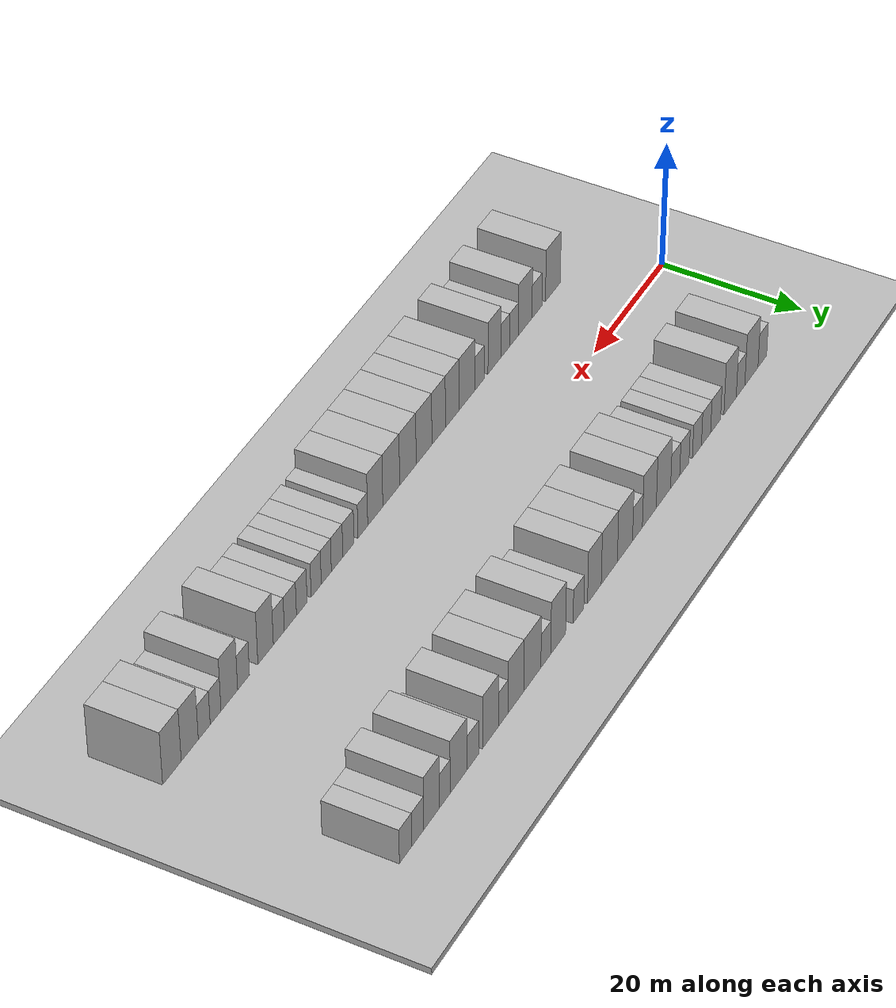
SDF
<sdf version="1.6">
 <world name="default">
  <include><name>ground_plane_1</name><uri>model://HANNAS_ground_plane</uri></include>
  <include>
   <name>ground_plane_2</name>
   <uri>model://HANNAS_ground_plane</uri>
   <pose>100 0 0  0 0 0</pose>
  </include>
  <model name="building_1">
   <static>1</static>
   <pose>12.3237 15.0000 0 0.000000 0.000000 1.570796</pose>
   <link name="link">
    <pose>0 0 3.00 0 0 0</pose>
    <collision name="collision"><geometry><box><size>10.0000 2.6474 6.0000</size></box></geometry></collision>
    <visual name="visual">
     <cast_shadows>0</cast_shadows>
     <geometry><box><size>10.0000 2.6474 6.0000</size></box></geometry>
     <material>
      <script>
       <uri>model://HANNAS_wall/materials/scripts</uri>
       <uri>model://HANNAS_wall/materials/textures</uri>
       <name>vrc/HANNAS_wall</name>
      </script>
     </material>
    </visual>
   </link>
  </model>
  <model name="building_2">
   <static>1</static>
   <pose>15.6544 15.0000 0 0.000000 0.000000 1.570796</pose>
   <link name="link">
    <pose>0 0 4.50 0 0 0</pose>
    <collision name="collision"><geometry><box><size>10.0000 4.0139 9.0000</size></box></geometry></collision>
    <visual name="visual">
     <cast_shadows>0</cast_shadows>
     <geometry><box><size>10.0000 4.0139 9.0000</size></box></geometry>
     <material>
      <script>
       <uri>model://HANNAS_wall/materials/scripts</uri>
       <uri>model://HANNAS_wall/materials/textures</uri>
       <name>vrc/HANNAS_wall</name>
      </script>
     </material>
    </visual>
   </link>
  </model>
  <model name="building_3">
   <static>1</static>
   <pose>18.9484 15.0000 0 0.000000 0.000000 1.570796</pose>
   <link name="link">
    <pose>0 0 3.00 0 0 0</pose>
    <collision name="collision"><geometry><box><size>10.0000 2.5741 6.0000</size></box></geometry></collision>
    <visual name="visual">
     <cast_shadows>0</cast_shadows>
     <geometry><box><size>10.0000 2.5741 6.0000</size></box></geometry>
     <material>
      <script>
       <uri>model://HANNAS_wall/materials/scripts</uri>
       <uri>model://HANNAS_wall/materials/textures</uri>
       <name>vrc/HANNAS_wall</name>
      </script>
     </material>
    </visual>
   </link>
  </model>
  <model name="building_4">
   <static>1</static>
   <pose>22.0810 15.0000 0 0.000000 0.000000 1.570796</pose>
   <link name="link">
    <pose>0 0 4.50 0 0 0</pose>
    <collision name="collision"><geometry><box><size>10.0000 3.6913 9.0000</size></box></geometry></collision>
    <visual name="visual">
     <cast_shadows>0</cast_shadows>
     <geometry><box><size>10.0000 3.6913 9.0000</size></box></geometry>
     <material>
      <script>
       <uri>model://HANNAS_wall/materials/scripts</uri>
       <uri>model://HANNAS_wall/materials/textures</uri>
       <name>vrc/HANNAS_wall</name>
      </script>
     </material>
    </visual>
   </link>
  </model>
  <model name="building_5">
   <static>1</static>
   <pose>26.3997 15.0000 0 0.000000 0.000000 1.570796</pose>
   <link name="link">
    <pose>0 0 3.00 0 0 0</pose>
    <collision name="collision"><geometry><box><size>10.0000 2.9461 6.0000</size></box></geometry></collision>
    <visual name="visual">
     <cast_shadows>0</cast_shadows>
     <geometry><box><size>10.0000 2.9461 6.0000</size></box></geometry>
     <material>
      <script>
       <uri>model://HANNAS_wall/materials/scripts</uri>
       <uri>model://HANNAS_wall/materials/textures</uri>
       <name>vrc/HANNAS_wall</name>
      </script>
     </material>
    </visual>
   </link>
  </model>
  <model name="building_6">
   <static>1</static>
   <pose>29.2214 15.0000 0 0.000000 0.000000 1.570796</pose>
   <link name="link">
    <pose>0 0 3.00 0 0 0</pose>
    <collision name="collision"><geometry><box><size>10.0000 2.6973 6.0000</size></box></geometry></collision>
    <visual name="visual">
     <cast_shadows>0</cast_shadows>
     <geometry><box><size>10.0000 2.6973 6.0000</size></box></geometry>
     <material>
      <script>
       <uri>model://HANNAS_wall/materials/scripts</uri>
       <uri>model://HANNAS_wall/materials/textures</uri>
       <name>vrc/HANNAS_wall</name>
      </script>
     </material>
    </visual>
   </link>
  </model>
  <model name="building_7">
   <static>1</static>
   <pose>31.8918 15.0000 0 0.000000 0.000000 1.570796</pose>
   <link name="link">
    <pose>0 0 3.00 0 0 0</pose>
    <collision name="collision"><geometry><box><size>10.0000 2.6435 6.0000</size></box></geometry></collision>
    <visual name="visual">
     <cast_shadows>0</cast_shadows>
     <geometry><box><size>10.0000 2.6435 6.0000</size></box></geometry>
     <material>
      <script>
       <uri>model://HANNAS_wall/materials/scripts</uri>
       <uri>model://HANNAS_wall/materials/textures</uri>
       <name>vrc/HANNAS_wall</name>
      </script>
     </material>
    </visual>
   </link>
  </model>
  <model name="building_8">
   <static>1</static>
   <pose>35.5562 15.0000 0 0.000000 0.000000 1.570796</pose>
   <link name="link">
    <pose>0 0 3.00 0 0 0</pose>
    <collision name="collision"><geometry><box><size>10.0000 2.6854 6.0000</size></box></geometry></collision>
    <visual name="visual">
     <cast_shadows>0</cast_shadows>
     <geometry><box><size>10.0000 2.6854 6.0000</size></box></geometry>
     <material>
      <script>
       <uri>model://HANNAS_wall/materials/scripts</uri>
       <uri>model://HANNAS_wall/materials/textures</uri>
       <name>vrc/HANNAS_wall</name>
      </script>
     </material>
    </visual>
   </link>
  </model>
  <model name="building_9">
   <static>1</static>
   <pose>38.2074 15.0000 0 0.000000 0.000000 1.570796</pose>
   <link name="link">
    <pose>0 0 3.00 0 0 0</pose>
    <collision name="collision"><geometry><box><size>10.0000 2.6171 6.0000</size></box></geometry></collision>
    <visual name="visual">
     <cast_shadows>0</cast_shadows>
     <geometry><box><size>10.0000 2.6171 6.0000</size></box></geometry>
     <material>
      <script>
       <uri>model://HANNAS_wall/materials/scripts</uri>
       <uri>model://HANNAS_wall/materials/textures</uri>
       <name>vrc/HANNAS_wall</name>
      </script>
     </material>
    </visual>
   </link>
  </model>
  <model name="building_10">
   <static>1</static>
   <pose>41.5692 15.0000 0 0.000000 0.000000 1.570796</pose>
   <link name="link">
    <pose>0 0 4.50 0 0 0</pose>
    <collision name="collision"><geometry><box><size>10.0000 4.1065 9.0000</size></box></geometry></collision>
    <visual name="visual">
     <cast_shadows>0</cast_shadows>
     <geometry><box><size>10.0000 4.1065 9.0000</size></box></geometry>
     <material>
      <script>
       <uri>model://HANNAS_wall/materials/scripts</uri>
       <uri>model://HANNAS_wall/materials/textures</uri>
       <name>vrc/HANNAS_wall</name>
      </script>
     </material>
    </visual>
   </link>
  </model>
  <model name="building_11">
   <static>1</static>
   <pose>45.5778 15.0000 0 0.000000 0.000000 1.570796</pose>
   <link name="link">
    <pose>0 0 4.50 0 0 0</pose>
    <collision name="collision"><geometry><box><size>10.0000 3.9108 9.0000</size></box></geometry></collision>
    <visual name="visual">
     <cast_shadows>0</cast_shadows>
     <geometry><box><size>10.0000 3.9108 9.0000</size></box></geometry>
     <material>
      <script>
       <uri>model://HANNAS_wall/materials/scripts</uri>
       <uri>model://HANNAS_wall/materials/textures</uri>
       <name>vrc/HANNAS_wall</name>
      </script>
     </material>
    </visual>
   </link>
  </model>
  <model name="building_12">
   <static>1</static>
   <pose>48.9108 15.0000 0 0.000000 0.000000 1.570796</pose>
   <link name="link">
    <pose>0 0 3.00 0 0 0</pose>
    <collision name="collision"><geometry><box><size>10.0000 2.7551 6.0000</size></box></geometry></collision>
    <visual name="visual">
     <cast_shadows>0</cast_shadows>
     <geometry><box><size>10.0000 2.7551 6.0000</size></box></geometry>
     <material>
      <script>
       <uri>model://HANNAS_wall/materials/scripts</uri>
       <uri>model://HANNAS_wall/materials/textures</uri>
       <name>vrc/HANNAS_wall</name>
      </script>
     </material>
    </visual>
   </link>
  </model>
  <model name="building_13">
   <static>1</static>
   <pose>52.4000 15.0000 0 0.000000 0.000000 1.570796</pose>
   <link name="link">
    <pose>0 0 4.50 0 0 0</pose>
    <collision name="collision"><geometry><box><size>10.0000 4.2232 9.0000</size></box></geometry></collision>
    <visual name="visual">
     <cast_shadows>0</cast_shadows>
     <geometry><box><size>10.0000 4.2232 9.0000</size></box></geometry>
     <material>
      <script>
       <uri>model://HANNAS_wall/materials/scripts</uri>
       <uri>model://HANNAS_wall/materials/textures</uri>
       <name>vrc/HANNAS_wall</name>
      </script>
     </material>
    </visual>
   </link>
  </model>
  <model name="building_14">
   <static>1</static>
   <pose>56.7198 15.0000 0 0.000000 0.000000 1.570796</pose>
   <link name="link">
    <pose>0 0 4.50 0 0 0</pose>
    <collision name="collision"><geometry><box><size>10.0000 4.4164 9.0000</size></box></geometry></collision>
    <visual name="visual">
     <cast_shadows>0</cast_shadows>
     <geometry><box><size>10.0000 4.4164 9.0000</size></box></geometry>
     <material>
      <script>
       <uri>model://HANNAS_wall/materials/scripts</uri>
       <uri>model://HANNAS_wall/materials/textures</uri>
       <name>vrc/HANNAS_wall</name>
      </script>
     </material>
    </visual>
   </link>
  </model>
  <model name="building_15">
   <static>1</static>
   <pose>60.7979 15.0000 0 0.000000 0.000000 1.570796</pose>
   <link name="link">
    <pose>0 0 4.50 0 0 0</pose>
    <collision name="collision"><geometry><box><size>10.0000 3.7398 9.0000</size></box></geometry></collision>
    <visual name="visual">
     <cast_shadows>0</cast_shadows>
     <geometry><box><size>10.0000 3.7398 9.0000</size></box></geometry>
     <material>
      <script>
       <uri>model://HANNAS_wall/materials/scripts</uri>
       <uri>model://HANNAS_wall/materials/textures</uri>
       <name>vrc/HANNAS_wall</name>
      </script>
     </material>
    </visual>
   </link>
  </model>
  <model name="building_16">
   <static>1</static>
   <pose>65.1097 15.0000 0 0.000000 0.000000 1.570796</pose>
   <link name="link">
    <pose>0 0 3.00 0 0 0</pose>
    <collision name="collision"><geometry><box><size>10.0000 2.8838 6.0000</size></box></geometry></collision>
    <visual name="visual">
     <cast_shadows>0</cast_shadows>
     <geometry><box><size>10.0000 2.8838 6.0000</size></box></geometry>
     <material>
      <script>
       <uri>model://HANNAS_wall/materials/scripts</uri>
       <uri>model://HANNAS_wall/materials/textures</uri>
       <name>vrc/HANNAS_wall</name>
      </script>
     </material>
    </visual>
   </link>
  </model>
  <model name="building_17">
   <static>1</static>
   <pose>70.5278 15.0000 0 0.000000 0.000000 1.570796</pose>
   <link name="link">
    <pose>0 0 4.50 0 0 0</pose>
    <collision name="collision"><geometry><box><size>10.0000 3.9525 9.0000</size></box></geometry></collision>
    <visual name="visual">
     <cast_shadows>0</cast_shadows>
     <geometry><box><size>10.0000 3.9525 9.0000</size></box></geometry>
     <material>
      <script>
       <uri>model://HANNAS_wall/materials/scripts</uri>
       <uri>model://HANNAS_wall/materials/textures</uri>
       <name>vrc/HANNAS_wall</name>
      </script>
     </material>
    </visual>
   </link>
  </model>
  <model name="building_18">
   <static>1</static>
   <pose>73.7992 15.0000 0 0.000000 0.000000 1.570796</pose>
   <link name="link">
    <pose>0 0 3.00 0 0 0</pose>
    <collision name="collision"><geometry><box><size>10.0000 2.5903 6.0000</size></box></geometry></collision>
    <visual name="visual">
     <cast_shadows>0</cast_shadows>
     <geometry><box><size>10.0000 2.5903 6.0000</size></box></geometry>
     <material>
      <script>
       <uri>model://HANNAS_wall/materials/scripts</uri>
       <uri>model://HANNAS_wall/materials/textures</uri>
       <name>vrc/HANNAS_wall</name>
      </script>
     </material>
    </visual>
   </link>
  </model>
  <model name="building_19">
   <static>1</static>
   <pose>77.3071 15.0000 0 0.000000 0.000000 1.570796</pose>
   <link name="link">
    <pose>0 0 4.50 0 0 0</pose>
    <collision name="collision"><geometry><box><size>10.0000 4.4255 9.0000</size></box></geometry></collision>
    <visual name="visual">
     <cast_shadows>0</cast_shadows>
     <geometry><box><size>10.0000 4.4255 9.0000</size></box></geometry>
     <material>
      <script>
       <uri>model://HANNAS_wall/materials/scripts</uri>
       <uri>model://HANNAS_wall/materials/textures</uri>
       <name>vrc/HANNAS_wall</name>
      </script>
     </material>
    </visual>
   </link>
  </model>
  <model name="building_20">
   <static>1</static>
   <pose>81.5744 15.0000 0 0.000000 0.000000 1.570796</pose>
   <link name="link">
    <pose>0 0 4.50 0 0 0</pose>
    <collision name="collision"><geometry><box><size>10.0000 4.1091 9.0000</size></box></geometry></collision>
    <visual name="visual">
     <cast_shadows>0</cast_shadows>
     <geometry><box><size>10.0000 4.1091 9.0000</size></box></geometry>
     <material>
      <script>
       <uri>model://HANNAS_wall/materials/scripts</uri>
       <uri>model://HANNAS_wall/materials/textures</uri>
       <name>vrc/HANNAS_wall</name>
      </script>
     </material>
    </visual>
   </link>
  </model>
  <model name="building_21">
   <static>1</static>
   <pose>84.8576 15.0000 0 0.000000 0.000000 1.570796</pose>
   <link name="link">
    <pose>0 0 3.00 0 0 0</pose>
    <collision name="collision"><geometry><box><size>10.0000 2.4574 6.0000</size></box></geometry></collision>
    <visual name="visual">
     <cast_shadows>0</cast_shadows>
     <geometry><box><size>10.0000 2.4574 6.0000</size></box></geometry>
     <material>
      <script>
       <uri>model://HANNAS_wall/materials/scripts</uri>
       <uri>model://HANNAS_wall/materials/textures</uri>
       <name>vrc/HANNAS_wall</name>
      </script>
     </material>
    </visual>
   </link>
  </model>
  <model name="building_22">
   <static>1</static>
   <pose>88.1054 15.0000 0 0.000000 0.000000 1.570796</pose>
   <link name="link">
    <pose>0 0 4.50 0 0 0</pose>
    <collision name="collision"><geometry><box><size>10.0000 4.0382 9.0000</size></box></geometry></collision>
    <visual name="visual">
     <cast_shadows>0</cast_shadows>
     <geometry><box><size>10.0000 4.0382 9.0000</size></box></geometry>
     <material>
      <script>
       <uri>model://HANNAS_wall/materials/scripts</uri>
       <uri>model://HANNAS_wall/materials/textures</uri>
       <name>vrc/HANNAS_wall</name>
      </script>
     </material>
    </visual>
   </link>
  </model>
  <model name="building_23">
   <static>1</static>
   <pose>92.5916 15.0000 0 0.000000 0.000000 1.570796</pose>
   <link name="link">
    <pose>0 0 3.00 0 0 0</pose>
    <collision name="collision"><geometry><box><size>10.0000 2.9342 6.0000</size></box></geometry></collision>
    <visual name="visual">
     <cast_shadows>0</cast_shadows>
     <geometry><box><size>10.0000 2.9342 6.0000</size></box></geometry>
     <material>
      <script>
       <uri>model://HANNAS_wall/materials/scripts</uri>
       <uri>model://HANNAS_wall/materials/textures</uri>
       <name>vrc/HANNAS_wall</name>
      </script>
     </material>
    </visual>
   </link>
  </model>
  <model name="building_24">
   <static>1</static>
   <pose>96.1244 15.0000 0 0.000000 0.000000 1.570796</pose>
   <link name="link">
    <pose>0 0 4.50 0 0 0</pose>
    <collision name="collision"><geometry><box><size>10.0000 4.1314 9.0000</size></box></geometry></collision>
    <visual name="visual">
     <cast_shadows>0</cast_shadows>
     <geometry><box><size>10.0000 4.1314 9.0000</size></box></geometry>
     <material>
      <script>
       <uri>model://HANNAS_wall/materials/scripts</uri>
       <uri>model://HANNAS_wall/materials/textures</uri>
       <name>vrc/HANNAS_wall</name>
      </script>
     </material>
    </visual>
   </link>
  </model>
  <model name="building_25">
   <static>1</static>
   <pose>99.4918 15.0000 0 0.000000 0.000000 1.570796</pose>
   <link name="link">
    <pose>0 0 3.00 0 0 0</pose>
    <collision name="collision"><geometry><box><size>10.0000 2.6035 6.0000</size></box></geometry></collision>
    <visual name="visual">
     <cast_shadows>0</cast_shadows>
     <geometry><box><size>10.0000 2.6035 6.0000</size></box></geometry>
     <material>
      <script>
       <uri>model://HANNAS_wall/materials/scripts</uri>
       <uri>model://HANNAS_wall/materials/textures</uri>
       <name>vrc/HANNAS_wall</name>
      </script>
     </material>
    </visual>
   </link>
  </model>
  <model name="building_26">
   <static>1</static>
   <pose>102.7264 15.0000 0 0.000000 0.000000 1.570796</pose>
   <link name="link">
    <pose>0 0 4.50 0 0 0</pose>
    <collision name="collision"><geometry><box><size>10.0000 3.8657 9.0000</size></box></geometry></collision>
    <visual name="visual">
     <cast_shadows>0</cast_shadows>
     <geometry><box><size>10.0000 3.8657 9.0000</size></box></geometry>
     <material>
      <script>
       <uri>model://HANNAS_wall/materials/scripts</uri>
       <uri>model://HANNAS_wall/materials/textures</uri>
       <name>vrc/HANNAS_wall</name>
      </script>
     </material>
    </visual>
   </link>
  </model>
  <model name="building_27">
   <static>1</static>
   <pose>106.1207 15.0000 0 0.000000 0.000000 1.570796</pose>
   <link name="link">
    <pose>0 0 3.00 0 0 0</pose>
    <collision name="collision"><geometry><box><size>10.0000 2.9230 6.0000</size></box></geometry></collision>
    <visual name="visual">
     <cast_shadows>0</cast_shadows>
     <geometry><box><size>10.0000 2.9230 6.0000</size></box></geometry>
     <material>
      <script>
       <uri>model://HANNAS_wall/materials/scripts</uri>
       <uri>model://HANNAS_wall/materials/textures</uri>
       <name>vrc/HANNAS_wall</name>
      </script>
     </material>
    </visual>
   </link>
  </model>
  <model name="building_28">
   <static>1</static>
   <pose>109.0614 15.0000 0 0.000000 0.000000 1.570796</pose>
   <link name="link">
    <pose>0 0 3.00 0 0 0</pose>
    <collision name="collision"><geometry><box><size>10.0000 2.9583 6.0000</size></box></geometry></collision>
    <visual name="visual">
     <cast_shadows>0</cast_shadows>
     <geometry><box><size>10.0000 2.9583 6.0000</size></box></geometry>
     <material>
      <script>
       <uri>model://HANNAS_wall/materials/scripts</uri>
       <uri>model://HANNAS_wall/materials/textures</uri>
       <name>vrc/HANNAS_wall</name>
      </script>
     </material>
    </visual>
   </link>
  </model>
  <model name="building_58">
   <static>1</static>
   <pose>12.1530 -15.0000 0 0.000000 0.000000 1.570796</pose>
   <link name="link">
    <pose>0 0 4.50 0 0 0</pose>
    <collision name="collision"><geometry><box><size>10.0000 4.3059 9.0000</size></box></geometry></collision>
    <visual name="visual">
     <cast_shadows>0</cast_shadows>
     <geometry><box><size>10.0000 4.3059 9.0000</size></box></geometry>
     <material>
      <script>
       <uri>model://HANNAS_wall/materials/scripts</uri>
       <uri>model://HANNAS_wall/materials/textures</uri>
       <name>vrc/HANNAS_wall</name>
      </script>
     </material>
    </visual>
   </link>
  </model>
  <model name="building_59">
   <static>1</static>
   <pose>16.7434 -15.0000 0 0.000000 0.000000 1.570796</pose>
   <link name="link">
    <pose>0 0 3.00 0 0 0</pose>
    <collision name="collision"><geometry><box><size>10.0000 2.8750 6.0000</size></box></geometry></collision>
    <visual name="visual">
     <cast_shadows>0</cast_shadows>
     <geometry><box><size>10.0000 2.8750 6.0000</size></box></geometry>
     <material>
      <script>
       <uri>model://HANNAS_wall/materials/scripts</uri>
       <uri>model://HANNAS_wall/materials/textures</uri>
       <name>vrc/HANNAS_wall</name>
      </script>
     </material>
    </visual>
   </link>
  </model>
  <model name="building_60">
   <static>1</static>
   <pose>20.1097 -15.0000 0 0.000000 0.000000 1.570796</pose>
   <link name="link">
    <pose>0 0 4.50 0 0 0</pose>
    <collision name="collision"><geometry><box><size>10.0000 3.8575 9.0000</size></box></geometry></collision>
    <visual name="visual">
     <cast_shadows>0</cast_shadows>
     <geometry><box><size>10.0000 3.8575 9.0000</size></box></geometry>
     <material>
      <script>
       <uri>model://HANNAS_wall/materials/scripts</uri>
       <uri>model://HANNAS_wall/materials/textures</uri>
       <name>vrc/HANNAS_wall</name>
      </script>
     </material>
    </visual>
   </link>
  </model>
  <model name="building_61">
   <static>1</static>
   <pose>23.2841 -15.0000 0 0.000000 0.000000 1.570796</pose>
   <link name="link">
    <pose>0 0 3.00 0 0 0</pose>
    <collision name="collision"><geometry><box><size>10.0000 2.4914 6.0000</size></box></geometry></collision>
    <visual name="visual">
     <cast_shadows>0</cast_shadows>
     <geometry><box><size>10.0000 2.4914 6.0000</size></box></geometry>
     <material>
      <script>
       <uri>model://HANNAS_wall/materials/scripts</uri>
       <uri>model://HANNAS_wall/materials/textures</uri>
       <name>vrc/HANNAS_wall</name>
      </script>
     </material>
    </visual>
   </link>
  </model>
  <model name="building_62">
   <static>1</static>
   <pose>25.7311 -15.0000 0 0.000000 0.000000 1.570796</pose>
   <link name="link">
    <pose>0 0 3.00 0 0 0</pose>
    <collision name="collision"><geometry><box><size>10.0000 2.4025 6.0000</size></box></geometry></collision>
    <visual name="visual">
     <cast_shadows>0</cast_shadows>
     <geometry><box><size>10.0000 2.4025 6.0000</size></box></geometry>
     <material>
      <script>
       <uri>model://HANNAS_wall/materials/scripts</uri>
       <uri>model://HANNAS_wall/materials/textures</uri>
       <name>vrc/HANNAS_wall</name>
      </script>
     </material>
    </visual>
   </link>
  </model>
  <model name="building_63">
   <static>1</static>
   <pose>28.7611 -15.0000 0 0.000000 0.000000 1.570796</pose>
   <link name="link">
    <pose>0 0 4.50 0 0 0</pose>
    <collision name="collision"><geometry><box><size>10.0000 3.6576 9.0000</size></box></geometry></collision>
    <visual name="visual">
     <cast_shadows>0</cast_shadows>
     <geometry><box><size>10.0000 3.6576 9.0000</size></box></geometry>
     <material>
      <script>
       <uri>model://HANNAS_wall/materials/scripts</uri>
       <uri>model://HANNAS_wall/materials/textures</uri>
       <name>vrc/HANNAS_wall</name>
      </script>
     </material>
    </visual>
   </link>
  </model>
  <model name="building_64">
   <static>1</static>
   <pose>32.8890 -15.0000 0 0.000000 0.000000 1.570796</pose>
   <link name="link">
    <pose>0 0 3.00 0 0 0</pose>
    <collision name="collision"><geometry><box><size>10.0000 2.5982 6.0000</size></box></geometry></collision>
    <visual name="visual">
     <cast_shadows>0</cast_shadows>
     <geometry><box><size>10.0000 2.5982 6.0000</size></box></geometry>
     <material>
      <script>
       <uri>model://HANNAS_wall/materials/scripts</uri>
       <uri>model://HANNAS_wall/materials/textures</uri>
       <name>vrc/HANNAS_wall</name>
      </script>
     </material>
    </visual>
   </link>
  </model>
  <model name="building_65">
   <static>1</static>
   <pose>36.3493 -15.0000 0 0.000000 0.000000 1.570796</pose>
   <link name="link">
    <pose>0 0 4.50 0 0 0</pose>
    <collision name="collision"><geometry><box><size>10.0000 4.3224 9.0000</size></box></geometry></collision>
    <visual name="visual">
     <cast_shadows>0</cast_shadows>
     <geometry><box><size>10.0000 4.3224 9.0000</size></box></geometry>
     <material>
      <script>
       <uri>model://HANNAS_wall/materials/scripts</uri>
       <uri>model://HANNAS_wall/materials/textures</uri>
       <name>vrc/HANNAS_wall</name>
      </script>
     </material>
    </visual>
   </link>
  </model>
  <model name="building_66">
   <static>1</static>
   <pose>40.3686 -15.0000 0 0.000000 0.000000 1.570796</pose>
   <link name="link">
    <pose>0 0 4.50 0 0 0</pose>
    <collision name="collision"><geometry><box><size>10.0000 3.7162 9.0000</size></box></geometry></collision>
    <visual name="visual">
     <cast_shadows>0</cast_shadows>
     <geometry><box><size>10.0000 3.7162 9.0000</size></box></geometry>
     <material>
      <script>
       <uri>model://HANNAS_wall/materials/scripts</uri>
       <uri>model://HANNAS_wall/materials/textures</uri>
       <name>vrc/HANNAS_wall</name>
      </script>
     </material>
    </visual>
   </link>
  </model>
  <model name="building_67">
   <static>1</static>
   <pose>44.0421 -15.0000 0 0.000000 0.000000 1.570796</pose>
   <link name="link">
    <pose>0 0 4.50 0 0 0</pose>
    <collision name="collision"><geometry><box><size>10.0000 3.6307 9.0000</size></box></geometry></collision>
    <visual name="visual">
     <cast_shadows>0</cast_shadows>
     <geometry><box><size>10.0000 3.6307 9.0000</size></box></geometry>
     <material>
      <script>
       <uri>model://HANNAS_wall/materials/scripts</uri>
       <uri>model://HANNAS_wall/materials/textures</uri>
       <name>vrc/HANNAS_wall</name>
      </script>
     </material>
    </visual>
   </link>
  </model>
  <model name="building_68">
   <static>1</static>
   <pose>47.9543 -15.0000 0 0.000000 0.000000 1.570796</pose>
   <link name="link">
    <pose>0 0 4.50 0 0 0</pose>
    <collision name="collision"><geometry><box><size>10.0000 4.1936 9.0000</size></box></geometry></collision>
    <visual name="visual">
     <cast_shadows>0</cast_shadows>
     <geometry><box><size>10.0000 4.1936 9.0000</size></box></geometry>
     <material>
      <script>
       <uri>model://HANNAS_wall/materials/scripts</uri>
       <uri>model://HANNAS_wall/materials/textures</uri>
       <name>vrc/HANNAS_wall</name>
      </script>
     </material>
    </visual>
   </link>
  </model>
  <model name="building_69">
   <static>1</static>
   <pose>52.2260 -15.0000 0 0.000000 0.000000 1.570796</pose>
   <link name="link">
    <pose>0 0 4.50 0 0 0</pose>
    <collision name="collision"><geometry><box><size>10.0000 4.3500 9.0000</size></box></geometry></collision>
    <visual name="visual">
     <cast_shadows>0</cast_shadows>
     <geometry><box><size>10.0000 4.3500 9.0000</size></box></geometry>
     <material>
      <script>
       <uri>model://HANNAS_wall/materials/scripts</uri>
       <uri>model://HANNAS_wall/materials/textures</uri>
       <name>vrc/HANNAS_wall</name>
      </script>
     </material>
    </visual>
   </link>
  </model>
  <model name="building_70">
   <static>1</static>
   <pose>56.5990 -15.0000 0 0.000000 0.000000 1.570796</pose>
   <link name="link">
    <pose>0 0 4.50 0 0 0</pose>
    <collision name="collision"><geometry><box><size>10.0000 4.3959 9.0000</size></box></geometry></collision>
    <visual name="visual">
     <cast_shadows>0</cast_shadows>
     <geometry><box><size>10.0000 4.3959 9.0000</size></box></geometry>
     <material>
      <script>
       <uri>model://HANNAS_wall/materials/scripts</uri>
       <uri>model://HANNAS_wall/materials/textures</uri>
       <name>vrc/HANNAS_wall</name>
      </script>
     </material>
    </visual>
   </link>
  </model>
  <model name="building_71">
   <static>1</static>
   <pose>60.7470 -15.0000 0 0.000000 0.000000 1.570796</pose>
   <link name="link">
    <pose>0 0 4.50 0 0 0</pose>
    <collision name="collision"><geometry><box><size>10.0000 3.9002 9.0000</size></box></geometry></collision>
    <visual name="visual">
     <cast_shadows>0</cast_shadows>
     <geometry><box><size>10.0000 3.9002 9.0000</size></box></geometry>
     <material>
      <script>
       <uri>model://HANNAS_wall/materials/scripts</uri>
       <uri>model://HANNAS_wall/materials/textures</uri>
       <name>vrc/HANNAS_wall</name>
      </script>
     </material>
    </visual>
   </link>
  </model>
  <model name="building_72">
   <static>1</static>
   <pose>63.9483 -15.0000 0 0.000000 0.000000 1.570796</pose>
   <link name="link">
    <pose>0 0 3.00 0 0 0</pose>
    <collision name="collision"><geometry><box><size>10.0000 2.5024 6.0000</size></box></geometry></collision>
    <visual name="visual">
     <cast_shadows>0</cast_shadows>
     <geometry><box><size>10.0000 2.5024 6.0000</size></box></geometry>
     <material>
      <script>
       <uri>model://HANNAS_wall/materials/scripts</uri>
       <uri>model://HANNAS_wall/materials/textures</uri>
       <name>vrc/HANNAS_wall</name>
      </script>
     </material>
    </visual>
   </link>
  </model>
  <model name="building_73">
   <static>1</static>
   <pose>67.6168 -15.0000 0 0.000000 0.000000 1.570796</pose>
   <link name="link">
    <pose>0 0 3.00 0 0 0</pose>
    <collision name="collision"><geometry><box><size>10.0000 2.8345 6.0000</size></box></geometry></collision>
    <visual name="visual">
     <cast_shadows>0</cast_shadows>
     <geometry><box><size>10.0000 2.8345 6.0000</size></box></geometry>
     <material>
      <script>
       <uri>model://HANNAS_wall/materials/scripts</uri>
       <uri>model://HANNAS_wall/materials/textures</uri>
       <name>vrc/HANNAS_wall</name>
      </script>
     </material>
    </visual>
   </link>
  </model>
  <model name="building_74">
   <static>1</static>
   <pose>70.4877 -15.0000 0 0.000000 0.000000 1.570796</pose>
   <link name="link">
    <pose>0 0 3.00 0 0 0</pose>
    <collision name="collision"><geometry><box><size>10.0000 2.9074 6.0000</size></box></geometry></collision>
    <visual name="visual">
     <cast_shadows>0</cast_shadows>
     <geometry><box><size>10.0000 2.9074 6.0000</size></box></geometry>
     <material>
      <script>
       <uri>model://HANNAS_wall/materials/scripts</uri>
       <uri>model://HANNAS_wall/materials/textures</uri>
       <name>vrc/HANNAS_wall</name>
      </script>
     </material>
    </visual>
   </link>
  </model>
  <model name="building_75">
   <static>1</static>
   <pose>73.1978 -15.0000 0 0.000000 0.000000 1.570796</pose>
   <link name="link">
    <pose>0 0 3.00 0 0 0</pose>
    <collision name="collision"><geometry><box><size>10.0000 2.5127 6.0000</size></box></geometry></collision>
    <visual name="visual">
     <cast_shadows>0</cast_shadows>
     <geometry><box><size>10.0000 2.5127 6.0000</size></box></geometry>
     <material>
      <script>
       <uri>model://HANNAS_wall/materials/scripts</uri>
       <uri>model://HANNAS_wall/materials/textures</uri>
       <name>vrc/HANNAS_wall</name>
      </script>
     </material>
    </visual>
   </link>
  </model>
  <model name="building_76">
   <static>1</static>
   <pose>75.7167 -15.0000 0 0.000000 0.000000 1.570796</pose>
   <link name="link">
    <pose>0 0 3.00 0 0 0</pose>
    <collision name="collision"><geometry><box><size>10.0000 2.5252 6.0000</size></box></geometry></collision>
    <visual name="visual">
     <cast_shadows>0</cast_shadows>
     <geometry><box><size>10.0000 2.5252 6.0000</size></box></geometry>
     <material>
      <script>
       <uri>model://HANNAS_wall/materials/scripts</uri>
       <uri>model://HANNAS_wall/materials/textures</uri>
       <name>vrc/HANNAS_wall</name>
      </script>
     </material>
    </visual>
   </link>
  </model>
  <model name="building_77">
   <static>1</static>
   <pose>79.2878 -15.0000 0 0.000000 0.000000 1.570796</pose>
   <link name="link">
    <pose>0 0 3.00 0 0 0</pose>
    <collision name="collision"><geometry><box><size>10.0000 2.6170 6.0000</size></box></geometry></collision>
    <visual name="visual">
     <cast_shadows>0</cast_shadows>
     <geometry><box><size>10.0000 2.6170 6.0000</size></box></geometry>
     <material>
      <script>
       <uri>model://HANNAS_wall/materials/scripts</uri>
       <uri>model://HANNAS_wall/materials/textures</uri>
       <name>vrc/HANNAS_wall</name>
      </script>
     </material>
    </visual>
   </link>
  </model>
  <model name="building_78">
   <static>1</static>
   <pose>82.0816 -15.0000 0 0.000000 0.000000 1.570796</pose>
   <link name="link">
    <pose>0 0 3.00 0 0 0</pose>
    <collision name="collision"><geometry><box><size>10.0000 2.9705 6.0000</size></box></geometry></collision>
    <visual name="visual">
     <cast_shadows>0</cast_shadows>
     <geometry><box><size>10.0000 2.9705 6.0000</size></box></geometry>
     <material>
      <script>
       <uri>model://HANNAS_wall/materials/scripts</uri>
       <uri>model://HANNAS_wall/materials/textures</uri>
       <name>vrc/HANNAS_wall</name>
      </script>
     </material>
    </visual>
   </link>
  </model>
  <model name="building_79">
   <static>1</static>
   <pose>84.9033 -15.0000 0 0.000000 0.000000 1.570796</pose>
   <link name="link">
    <pose>0 0 3.00 0 0 0</pose>
    <collision name="collision"><geometry><box><size>10.0000 2.6730 6.0000</size></box></geometry></collision>
    <visual name="visual">
     <cast_shadows>0</cast_shadows>
     <geometry><box><size>10.0000 2.6730 6.0000</size></box></geometry>
     <material>
      <script>
       <uri>model://HANNAS_wall/materials/scripts</uri>
       <uri>model://HANNAS_wall/materials/textures</uri>
       <name>vrc/HANNAS_wall</name>
      </script>
     </material>
    </visual>
   </link>
  </model>
  <model name="building_80">
   <static>1</static>
   <pose>88.1082 -15.0000 0 0.000000 0.000000 1.570796</pose>
   <link name="link">
    <pose>0 0 4.50 0 0 0</pose>
    <collision name="collision"><geometry><box><size>10.0000 3.7370 9.0000</size></box></geometry></collision>
    <visual name="visual">
     <cast_shadows>0</cast_shadows>
     <geometry><box><size>10.0000 3.7370 9.0000</size></box></geometry>
     <material>
      <script>
       <uri>model://HANNAS_wall/materials/scripts</uri>
       <uri>model://HANNAS_wall/materials/textures</uri>
       <name>vrc/HANNAS_wall</name>
      </script>
     </material>
    </visual>
   </link>
  </model>
  <model name="building_81">
   <static>1</static>
   <pose>93.3863 -15.0000 0 0.000000 0.000000 1.570796</pose>
   <link name="link">
    <pose>0 0 3.00 0 0 0</pose>
    <collision name="collision"><geometry><box><size>10.0000 2.8192 6.0000</size></box></geometry></collision>
    <visual name="visual">
     <cast_shadows>0</cast_shadows>
     <geometry><box><size>10.0000 2.8192 6.0000</size></box></geometry>
     <material>
      <script>
       <uri>model://HANNAS_wall/materials/scripts</uri>
       <uri>model://HANNAS_wall/materials/textures</uri>
       <name>vrc/HANNAS_wall</name>
      </script>
     </material>
    </visual>
   </link>
  </model>
  <model name="building_82">
   <static>1</static>
   <pose>96.7603 -15.0000 0 0.000000 0.000000 1.570796</pose>
   <link name="link">
    <pose>0 0 4.50 0 0 0</pose>
    <collision name="collision"><geometry><box><size>10.0000 3.9289 9.0000</size></box></geometry></collision>
    <visual name="visual">
     <cast_shadows>0</cast_shadows>
     <geometry><box><size>10.0000 3.9289 9.0000</size></box></geometry>
     <material>
      <script>
       <uri>model://HANNAS_wall/materials/scripts</uri>
       <uri>model://HANNAS_wall/materials/textures</uri>
       <name>vrc/HANNAS_wall</name>
      </script>
     </material>
    </visual>
   </link>
  </model>
  <model name="building_83">
   <static>1</static>
   <pose>99.9871 -15.0000 0 0.000000 0.000000 1.570796</pose>
   <link name="link">
    <pose>0 0 3.00 0 0 0</pose>
    <collision name="collision"><geometry><box><size>10.0000 2.5247 6.0000</size></box></geometry></collision>
    <visual name="visual">
     <cast_shadows>0</cast_shadows>
     <geometry><box><size>10.0000 2.5247 6.0000</size></box></geometry>
     <material>
      <script>
       <uri>model://HANNAS_wall/materials/scripts</uri>
       <uri>model://HANNAS_wall/materials/textures</uri>
       <name>vrc/HANNAS_wall</name>
      </script>
     </material>
    </visual>
   </link>
  </model>
  <model name="building_84">
   <static>1</static>
   <pose>102.6329 -15.0000 0 0.000000 0.000000 1.570796</pose>
   <link name="link">
    <pose>0 0 3.00 0 0 0</pose>
    <collision name="collision"><geometry><box><size>10.0000 2.7668 6.0000</size></box></geometry></collision>
    <visual name="visual">
     <cast_shadows>0</cast_shadows>
     <geometry><box><size>10.0000 2.7668 6.0000</size></box></geometry>
     <material>
      <script>
       <uri>model://HANNAS_wall/materials/scripts</uri>
       <uri>model://HANNAS_wall/materials/textures</uri>
       <name>vrc/HANNAS_wall</name>
      </script>
     </material>
    </visual>
   </link>
  </model>
  <model name="building_85">
   <static>1</static>
   <pose>105.9797 -15.0000 0 0.000000 0.000000 1.570796</pose>
   <link name="link">
    <pose>0 0 4.50 0 0 0</pose>
    <collision name="collision"><geometry><box><size>10.0000 3.9270 9.0000</size></box></geometry></collision>
    <visual name="visual">
     <cast_shadows>0</cast_shadows>
     <geometry><box><size>10.0000 3.9270 9.0000</size></box></geometry>
     <material>
      <script>
       <uri>model://HANNAS_wall/materials/scripts</uri>
       <uri>model://HANNAS_wall/materials/textures</uri>
       <name>vrc/HANNAS_wall</name>
      </script>
     </material>
    </visual>
   </link>
  </model>
  <model name="building_86">
   <static>1</static>
   <pose>110.0636 -15.0000 0 0.000000 0.000000 1.570796</pose>
   <link name="link">
    <pose>0 0 4.50 0 0 0</pose>
    <collision name="collision"><geometry><box><size>10.0000 4.2408 9.0000</size></box></geometry></collision>
    <visual name="visual">
     <cast_shadows>0</cast_shadows>
     <geometry><box><size>10.0000 4.2408 9.0000</size></box></geometry>
     <material>
      <script>
       <uri>model://HANNAS_wall/materials/scripts</uri>
       <uri>model://HANNAS_wall/materials/textures</uri>
       <name>vrc/HANNAS_wall</name>
      </script>
     </material>
    </visual>
   </link>
  </model>
 </world>
</sdf>
